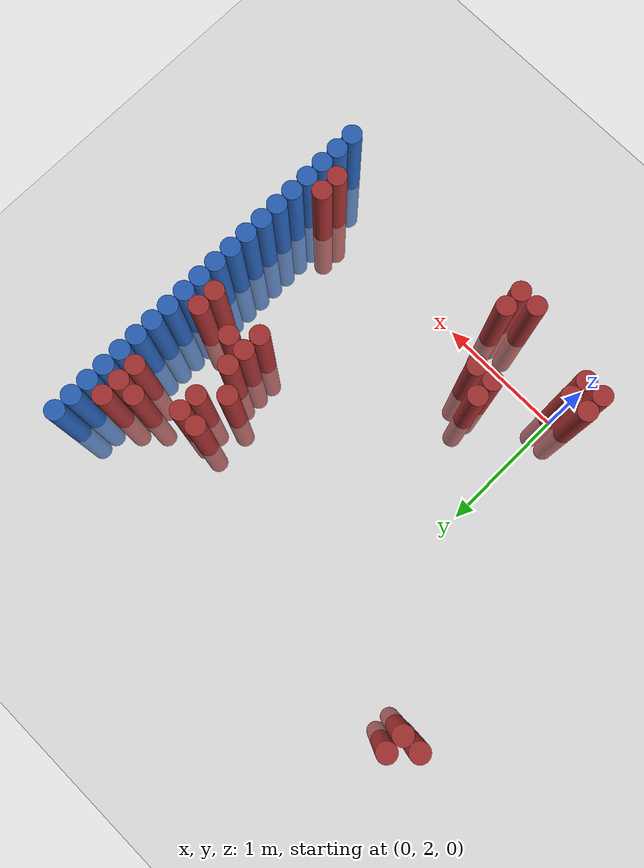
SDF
<sdf version="1.6">
 <world name="default">
  <model name="ground_plane">
   <static>1</static>
   <link name="link">
    <collision name="collision">
     <geometry><plane><normal>0 0 1</normal><size>100 100</size></plane></geometry>
     <surface><friction><ode><mu>100</mu><mu2>50</mu2></ode></friction></surface>
    </collision>
    <visual name="visual">
     <cast_shadows>0</cast_shadows>
     <geometry><plane><normal>0 0 1</normal><size>100 100</size></plane></geometry>
     <material>
      <script><uri>file://media/materials/scripts/gazebo.material</uri><name>Gazebo/Grey</name></script>
     </material>
    </visual>
   </link>
  </model>
  <model name="unit_cylinder_158">
   <static>1</static>
   <pose>-0.875000 4.375000 0.000000 0.000000 0.000000 0.000000</pose>
   <link name="link">
    <inertial>
     <mass>1</mass>
     <inertia><ixx>0.145833</ixx><ixy>0</ixy><ixz>0</ixz><iyy>0.145833</iyy><iyz>0</iyz><izz>0.125</izz></inertia>
    </inertial>
    <collision name="collision">
     <geometry><cylinder><radius>0.075000</radius><length>1.5</length></cylinder></geometry>
    </collision>
    <visual name="visual">
     <geometry><cylinder><radius>0.075000</radius><length>1.5</length></cylinder></geometry>
     <material>
      <ambient>0.648000 0.192000 0.192000 1</ambient>
      <diffuse>0.648000 0.192000 0.192000 1</diffuse>
     </material>
     <material>
      <script><name>Gazebo/Grey</name><uri>file://media/materials/scripts/gazebo.material</uri></script>
     </material>
    </visual>
   </link>
  </model>
  <model name="unit_cylinder_161">
   <static>1</static>
   <pose>-0.725000 4.375000 0.000000 0.000000 0.000000 0.000000</pose>
   <link name="link">
    <inertial>
     <mass>1</mass>
     <inertia><ixx>0.145833</ixx><ixy>0</ixy><ixz>0</ixz><iyy>0.145833</iyy><iyz>0</iyz><izz>0.125</izz></inertia>
    </inertial>
    <collision name="collision">
     <geometry><cylinder><radius>0.075000</radius><length>1.5</length></cylinder></geometry>
    </collision>
    <visual name="visual">
     <geometry><cylinder><radius>0.075000</radius><length>1.5</length></cylinder></geometry>
     <material>
      <ambient>0.648000 0.192000 0.192000 1</ambient>
      <diffuse>0.648000 0.192000 0.192000 1</diffuse>
     </material>
     <material>
      <script><name>Gazebo/Grey</name><uri>file://media/materials/scripts/gazebo.material</uri></script>
     </material>
    </visual>
   </link>
  </model>
  <model name="unit_cylinder_162">
   <static>1</static>
   <pose>-0.725000 4.525000 0.000000 0.000000 0.000000 0.000000</pose>
   <link name="link">
    <inertial>
     <mass>1</mass>
     <inertia><ixx>0.145833</ixx><ixy>0</ixy><ixz>0</ixz><iyy>0.145833</iyy><iyz>0</iyz><izz>0.125</izz></inertia>
    </inertial>
    <collision name="collision">
     <geometry><cylinder><radius>0.075000</radius><length>1.5</length></cylinder></geometry>
    </collision>
    <visual name="visual">
     <geometry><cylinder><radius>0.075000</radius><length>1.5</length></cylinder></geometry>
     <material>
      <ambient>0.648000 0.192000 0.192000 1</ambient>
      <diffuse>0.648000 0.192000 0.192000 1</diffuse>
     </material>
     <material>
      <script><name>Gazebo/Grey</name><uri>file://media/materials/scripts/gazebo.material</uri></script>
     </material>
    </visual>
   </link>
  </model>
  <model name="unit_cylinder_182">
   <static>1</static>
   <pose>-0.125000 1.825000 0.000000 0.000000 0.000000 0.000000</pose>
   <link name="link">
    <inertial>
     <mass>1</mass>
     <inertia><ixx>0.145833</ixx><ixy>0</ixy><ixz>0</ixz><iyy>0.145833</iyy><iyz>0</iyz><izz>0.125</izz></inertia>
    </inertial>
    <collision name="collision">
     <geometry><cylinder><radius>0.075000</radius><length>1.5</length></cylinder></geometry>
    </collision>
    <visual name="visual">
     <geometry><cylinder><radius>0.075000</radius><length>1.5</length></cylinder></geometry>
     <material>
      <ambient>0.648000 0.192000 0.192000 1</ambient>
      <diffuse>0.648000 0.192000 0.192000 1</diffuse>
     </material>
     <material>
      <script><name>Gazebo/Grey</name><uri>file://media/materials/scripts/gazebo.material</uri></script>
     </material>
    </visual>
   </link>
  </model>
  <model name="unit_cylinder_183">
   <static>1</static>
   <pose>-0.125000 1.975000 0.000000 0.000000 0.000000 0.000000</pose>
   <link name="link">
    <inertial>
     <mass>1</mass>
     <inertia><ixx>0.145833</ixx><ixy>0</ixy><ixz>0</ixz><iyy>0.145833</iyy><iyz>0</iyz><izz>0.125</izz></inertia>
    </inertial>
    <collision name="collision">
     <geometry><cylinder><radius>0.075000</radius><length>1.5</length></cylinder></geometry>
    </collision>
    <visual name="visual">
     <geometry><cylinder><radius>0.075000</radius><length>1.5</length></cylinder></geometry>
     <material>
      <ambient>0.648000 0.192000 0.192000 1</ambient>
      <diffuse>0.648000 0.192000 0.192000 1</diffuse>
     </material>
     <material>
      <script><name>Gazebo/Grey</name><uri>file://media/materials/scripts/gazebo.material</uri></script>
     </material>
    </visual>
   </link>
  </model>
  <model name="unit_cylinder_185">
   <static>1</static>
   <pose>0.025000 1.825000 0.000000 0.000000 0.000000 0.000000</pose>
   <link name="link">
    <inertial>
     <mass>1</mass>
     <inertia><ixx>0.145833</ixx><ixy>0</ixy><ixz>0</ixz><iyy>0.145833</iyy><iyz>0</iyz><izz>0.125</izz></inertia>
    </inertial>
    <collision name="collision">
     <geometry><cylinder><radius>0.075000</radius><length>1.5</length></cylinder></geometry>
    </collision>
    <visual name="visual">
     <geometry><cylinder><radius>0.075000</radius><length>1.5</length></cylinder></geometry>
     <material>
      <ambient>0.648000 0.192000 0.192000 1</ambient>
      <diffuse>0.648000 0.192000 0.192000 1</diffuse>
     </material>
     <material>
      <script><name>Gazebo/Grey</name><uri>file://media/materials/scripts/gazebo.material</uri></script>
     </material>
    </visual>
   </link>
  </model>
  <model name="unit_cylinder_186">
   <static>1</static>
   <pose>0.025000 1.975000 0.000000 0.000000 0.000000 0.000000</pose>
   <link name="link">
    <inertial>
     <mass>1</mass>
     <inertia><ixx>0.145833</ixx><ixy>0</ixy><ixz>0</ixz><iyy>0.145833</iyy><iyz>0</iyz><izz>0.125</izz></inertia>
    </inertial>
    <collision name="collision">
     <geometry><cylinder><radius>0.075000</radius><length>1.5</length></cylinder></geometry>
    </collision>
    <visual name="visual">
     <geometry><cylinder><radius>0.075000</radius><length>1.5</length></cylinder></geometry>
     <material>
      <ambient>0.648000 0.192000 0.192000 1</ambient>
      <diffuse>0.648000 0.192000 0.192000 1</diffuse>
     </material>
     <material>
      <script><name>Gazebo/Grey</name><uri>file://media/materials/scripts/gazebo.material</uri></script>
     </material>
    </visual>
   </link>
  </model>
  <model name="unit_cylinder_187">
   <static>1</static>
   <pose>0.475000 2.275000 0.000000 0.000000 0.000000 0.000000</pose>
   <link name="link">
    <inertial>
     <mass>1</mass>
     <inertia><ixx>0.145833</ixx><ixy>0</ixy><ixz>0</ixz><iyy>0.145833</iyy><iyz>0</iyz><izz>0.125</izz></inertia>
    </inertial>
    <collision name="collision">
     <geometry><cylinder><radius>0.075000</radius><length>1.5</length></cylinder></geometry>
    </collision>
    <visual name="visual">
     <geometry><cylinder><radius>0.075000</radius><length>1.5</length></cylinder></geometry>
     <material>
      <ambient>0.648000 0.192000 0.192000 1</ambient>
      <diffuse>0.648000 0.192000 0.192000 1</diffuse>
     </material>
     <material>
      <script><name>Gazebo/Grey</name><uri>file://media/materials/scripts/gazebo.material</uri></script>
     </material>
    </visual>
   </link>
  </model>
  <model name="unit_cylinder_188">
   <static>1</static>
   <pose>0.475000 2.425000 0.000000 0.000000 0.000000 0.000000</pose>
   <link name="link">
    <inertial>
     <mass>1</mass>
     <inertia><ixx>0.145833</ixx><ixy>0</ixy><ixz>0</ixz><iyy>0.145833</iyy><iyz>0</iyz><izz>0.125</izz></inertia>
    </inertial>
    <collision name="collision">
     <geometry><cylinder><radius>0.075000</radius><length>1.5</length></cylinder></geometry>
    </collision>
    <visual name="visual">
     <geometry><cylinder><radius>0.075000</radius><length>1.5</length></cylinder></geometry>
     <material>
      <ambient>0.648000 0.192000 0.192000 1</ambient>
      <diffuse>0.648000 0.192000 0.192000 1</diffuse>
     </material>
     <material>
      <script><name>Gazebo/Grey</name><uri>file://media/materials/scripts/gazebo.material</uri></script>
     </material>
    </visual>
   </link>
  </model>
  <model name="unit_cylinder_189">
   <static>1</static>
   <pose>0.625000 1.675000 0.000000 0.000000 0.000000 0.000000</pose>
   <link name="link">
    <inertial>
     <mass>1</mass>
     <inertia><ixx>0.145833</ixx><ixy>0</ixy><ixz>0</ixz><iyy>0.145833</iyy><iyz>0</iyz><izz>0.125</izz></inertia>
    </inertial>
    <collision name="collision">
     <geometry><cylinder><radius>0.075000</radius><length>1.5</length></cylinder></geometry>
    </collision>
    <visual name="visual">
     <geometry><cylinder><radius>0.075000</radius><length>1.5</length></cylinder></geometry>
     <material>
      <ambient>0.648000 0.192000 0.192000 1</ambient>
      <diffuse>0.648000 0.192000 0.192000 1</diffuse>
     </material>
     <material>
      <script><name>Gazebo/Grey</name><uri>file://media/materials/scripts/gazebo.material</uri></script>
     </material>
    </visual>
   </link>
  </model>
  <model name="unit_cylinder_190">
   <static>1</static>
   <pose>0.625000 2.275000 0.000000 0.000000 0.000000 0.000000</pose>
   <link name="link">
    <inertial>
     <mass>1</mass>
     <inertia><ixx>0.145833</ixx><ixy>0</ixy><ixz>0</ixz><iyy>0.145833</iyy><iyz>0</iyz><izz>0.125</izz></inertia>
    </inertial>
    <collision name="collision">
     <geometry><cylinder><radius>0.075000</radius><length>1.5</length></cylinder></geometry>
    </collision>
    <visual name="visual">
     <geometry><cylinder><radius>0.075000</radius><length>1.5</length></cylinder></geometry>
     <material>
      <ambient>0.648000 0.192000 0.192000 1</ambient>
      <diffuse>0.648000 0.192000 0.192000 1</diffuse>
     </material>
     <material>
      <script><name>Gazebo/Grey</name><uri>file://media/materials/scripts/gazebo.material</uri></script>
     </material>
    </visual>
   </link>
  </model>
  <model name="unit_cylinder_192">
   <static>1</static>
   <pose>0.775000 1.675000 0.000000 0.000000 0.000000 0.000000</pose>
   <link name="link">
    <inertial>
     <mass>1</mass>
     <inertia><ixx>0.145833</ixx><ixy>0</ixy><ixz>0</ixz><iyy>0.145833</iyy><iyz>0</iyz><izz>0.125</izz></inertia>
    </inertial>
    <collision name="collision">
     <geometry><cylinder><radius>0.075000</radius><length>1.5</length></cylinder></geometry>
    </collision>
    <visual name="visual">
     <geometry><cylinder><radius>0.075000</radius><length>1.5</length></cylinder></geometry>
     <material>
      <ambient>0.648000 0.192000 0.192000 1</ambient>
      <diffuse>0.648000 0.192000 0.192000 1</diffuse>
     </material>
     <material>
      <script><name>Gazebo/Grey</name><uri>file://media/materials/scripts/gazebo.material</uri></script>
     </material>
    </visual>
   </link>
  </model>
  <model name="unit_cylinder_193">
   <static>1</static>
   <pose>0.775000 1.825000 0.000000 0.000000 0.000000 0.000000</pose>
   <link name="link">
    <inertial>
     <mass>1</mass>
     <inertia><ixx>0.145833</ixx><ixy>0</ixy><ixz>0</ixz><iyy>0.145833</iyy><iyz>0</iyz><izz>0.125</izz></inertia>
    </inertial>
    <collision name="collision">
     <geometry><cylinder><radius>0.075000</radius><length>1.5</length></cylinder></geometry>
    </collision>
    <visual name="visual">
     <geometry><cylinder><radius>0.075000</radius><length>1.5</length></cylinder></geometry>
     <material>
      <ambient>0.648000 0.192000 0.192000 1</ambient>
      <diffuse>0.648000 0.192000 0.192000 1</diffuse>
     </material>
     <material>
      <script><name>Gazebo/Grey</name><uri>file://media/materials/scripts/gazebo.material</uri></script>
     </material>
    </visual>
   </link>
  </model>
  <model name="unit_cylinder_196">
   <static>1</static>
   <pose>1.675000 3.625000 0.000000 0.000000 0.000000 0.000000</pose>
   <link name="link">
    <inertial>
     <mass>1</mass>
     <inertia><ixx>0.145833</ixx><ixy>0</ixy><ixz>0</ixz><iyy>0.145833</iyy><iyz>0</iyz><izz>0.125</izz></inertia>
    </inertial>
    <collision name="collision">
     <geometry><cylinder><radius>0.075000</radius><length>1.5</length></cylinder></geometry>
    </collision>
    <visual name="visual">
     <geometry><cylinder><radius>0.075000</radius><length>1.5</length></cylinder></geometry>
     <material>
      <ambient>0.648000 0.192000 0.192000 1</ambient>
      <diffuse>0.648000 0.192000 0.192000 1</diffuse>
     </material>
     <material>
      <script><name>Gazebo/Grey</name><uri>file://media/materials/scripts/gazebo.material</uri></script>
     </material>
    </visual>
   </link>
  </model>
  <model name="unit_cylinder_197">
   <static>1</static>
   <pose>1.675000 3.925000 0.000000 0.000000 0.000000 0.000000</pose>
   <link name="link">
    <inertial>
     <mass>1</mass>
     <inertia><ixx>0.145833</ixx><ixy>0</ixy><ixz>0</ixz><iyy>0.145833</iyy><iyz>0</iyz><izz>0.125</izz></inertia>
    </inertial>
    <collision name="collision">
     <geometry><cylinder><radius>0.075000</radius><length>1.5</length></cylinder></geometry>
    </collision>
    <visual name="visual">
     <geometry><cylinder><radius>0.075000</radius><length>1.5</length></cylinder></geometry>
     <material>
      <ambient>0.648000 0.192000 0.192000 1</ambient>
      <diffuse>0.648000 0.192000 0.192000 1</diffuse>
     </material>
     <material>
      <script><name>Gazebo/Grey</name><uri>file://media/materials/scripts/gazebo.material</uri></script>
     </material>
    </visual>
   </link>
  </model>
  <model name="unit_cylinder_198">
   <static>1</static>
   <pose>1.825000 3.175000 0.000000 0.000000 0.000000 0.000000</pose>
   <link name="link">
    <inertial>
     <mass>1</mass>
     <inertia><ixx>0.145833</ixx><ixy>0</ixy><ixz>0</ixz><iyy>0.145833</iyy><iyz>0</iyz><izz>0.125</izz></inertia>
    </inertial>
    <collision name="collision">
     <geometry><cylinder><radius>0.075000</radius><length>1.5</length></cylinder></geometry>
    </collision>
    <visual name="visual">
     <geometry><cylinder><radius>0.075000</radius><length>1.5</length></cylinder></geometry>
     <material>
      <ambient>0.648000 0.192000 0.192000 1</ambient>
      <diffuse>0.648000 0.192000 0.192000 1</diffuse>
     </material>
     <material>
      <script><name>Gazebo/Grey</name><uri>file://media/materials/scripts/gazebo.material</uri></script>
     </material>
    </visual>
   </link>
  </model>
  <model name="unit_cylinder_199">
   <static>1</static>
   <pose>1.825000 3.325000 0.000000 0.000000 0.000000 0.000000</pose>
   <link name="link">
    <inertial>
     <mass>1</mass>
     <inertia><ixx>0.145833</ixx><ixy>0</ixy><ixz>0</ixz><iyy>0.145833</iyy><iyz>0</iyz><izz>0.125</izz></inertia>
    </inertial>
    <collision name="collision">
     <geometry><cylinder><radius>0.075000</radius><length>1.5</length></cylinder></geometry>
    </collision>
    <visual name="visual">
     <geometry><cylinder><radius>0.075000</radius><length>1.5</length></cylinder></geometry>
     <material>
      <ambient>0.648000 0.192000 0.192000 1</ambient>
      <diffuse>0.648000 0.192000 0.192000 1</diffuse>
     </material>
     <material>
      <script><name>Gazebo/Grey</name><uri>file://media/materials/scripts/gazebo.material</uri></script>
     </material>
    </visual>
   </link>
  </model>
  <model name="unit_cylinder_200">
   <static>1</static>
   <pose>1.825000 3.475000 0.000000 0.000000 0.000000 0.000000</pose>
   <link name="link">
    <inertial>
     <mass>1</mass>
     <inertia><ixx>0.145833</ixx><ixy>0</ixy><ixz>0</ixz><iyy>0.145833</iyy><iyz>0</iyz><izz>0.125</izz></inertia>
    </inertial>
    <collision name="collision">
     <geometry><cylinder><radius>0.075000</radius><length>1.5</length></cylinder></geometry>
    </collision>
    <visual name="visual">
     <geometry><cylinder><radius>0.075000</radius><length>1.5</length></cylinder></geometry>
     <material>
      <ambient>0.648000 0.192000 0.192000 1</ambient>
      <diffuse>0.648000 0.192000 0.192000 1</diffuse>
     </material>
     <material>
      <script><name>Gazebo/Grey</name><uri>file://media/materials/scripts/gazebo.material</uri></script>
     </material>
    </visual>
   </link>
  </model>
  <model name="unit_cylinder_201">
   <static>1</static>
   <pose>1.825000 3.775000 0.000000 0.000000 0.000000 0.000000</pose>
   <link name="link">
    <inertial>
     <mass>1</mass>
     <inertia><ixx>0.145833</ixx><ixy>0</ixy><ixz>0</ixz><iyy>0.145833</iyy><iyz>0</iyz><izz>0.125</izz></inertia>
    </inertial>
    <collision name="collision">
     <geometry><cylinder><radius>0.075000</radius><length>1.5</length></cylinder></geometry>
    </collision>
    <visual name="visual">
     <geometry><cylinder><radius>0.075000</radius><length>1.5</length></cylinder></geometry>
     <material>
      <ambient>0.648000 0.192000 0.192000 1</ambient>
      <diffuse>0.648000 0.192000 0.192000 1</diffuse>
     </material>
     <material>
      <script><name>Gazebo/Grey</name><uri>file://media/materials/scripts/gazebo.material</uri></script>
     </material>
    </visual>
   </link>
  </model>
  <model name="unit_cylinder_202">
   <static>1</static>
   <pose>1.825000 3.925000 0.000000 0.000000 0.000000 0.000000</pose>
   <link name="link">
    <inertial>
     <mass>1</mass>
     <inertia><ixx>0.145833</ixx><ixy>0</ixy><ixz>0</ixz><iyy>0.145833</iyy><iyz>0</iyz><izz>0.125</izz></inertia>
    </inertial>
    <collision name="collision">
     <geometry><cylinder><radius>0.075000</radius><length>1.5</length></cylinder></geometry>
    </collision>
    <visual name="visual">
     <geometry><cylinder><radius>0.075000</radius><length>1.5</length></cylinder></geometry>
     <material>
      <ambient>0.648000 0.192000 0.192000 1</ambient>
      <diffuse>0.648000 0.192000 0.192000 1</diffuse>
     </material>
     <material>
      <script><name>Gazebo/Grey</name><uri>file://media/materials/scripts/gazebo.material</uri></script>
     </material>
    </visual>
   </link>
  </model>
  <model name="unit_cylinder_203">
   <static>1</static>
   <pose>1.975000 3.325000 0.000000 0.000000 0.000000 0.000000</pose>
   <link name="link">
    <inertial>
     <mass>1</mass>
     <inertia><ixx>0.145833</ixx><ixy>0</ixy><ixz>0</ixz><iyy>0.145833</iyy><iyz>0</iyz><izz>0.125</izz></inertia>
    </inertial>
    <collision name="collision">
     <geometry><cylinder><radius>0.075000</radius><length>1.5</length></cylinder></geometry>
    </collision>
    <visual name="visual">
     <geometry><cylinder><radius>0.075000</radius><length>1.5</length></cylinder></geometry>
     <material>
      <ambient>0.648000 0.192000 0.192000 1</ambient>
      <diffuse>0.648000 0.192000 0.192000 1</diffuse>
     </material>
     <material>
      <script><name>Gazebo/Grey</name><uri>file://media/materials/scripts/gazebo.material</uri></script>
     </material>
    </visual>
   </link>
  </model>
  <model name="unit_cylinder_204">
   <static>1</static>
   <pose>2.125000 4.075000 0.000000 0.000000 0.000000 0.000000</pose>
   <link name="link">
    <inertial>
     <mass>1</mass>
     <inertia><ixx>0.145833</ixx><ixy>0</ixy><ixz>0</ixz><iyy>0.145833</iyy><iyz>0</iyz><izz>0.125</izz></inertia>
    </inertial>
    <collision name="collision">
     <geometry><cylinder><radius>0.075000</radius><length>1.5</length></cylinder></geometry>
    </collision>
    <visual name="visual">
     <geometry><cylinder><radius>0.075000</radius><length>1.5</length></cylinder></geometry>
     <material>
      <ambient>0.648000 0.192000 0.192000 1</ambient>
      <diffuse>0.648000 0.192000 0.192000 1</diffuse>
     </material>
     <material>
      <script><name>Gazebo/Grey</name><uri>file://media/materials/scripts/gazebo.material</uri></script>
     </material>
    </visual>
   </link>
  </model>
  <model name="unit_cylinder_207">
   <static>1</static>
   <pose>2.275000 1.975000 0.000000 0.000000 0.000000 0.000000</pose>
   <link name="link">
    <inertial>
     <mass>1</mass>
     <inertia><ixx>0.145833</ixx><ixy>0</ixy><ixz>0</ixz><iyy>0.145833</iyy><iyz>0</iyz><izz>0.125</izz></inertia>
    </inertial>
    <collision name="collision">
     <geometry><cylinder><radius>0.075000</radius><length>1.5</length></cylinder></geometry>
    </collision>
    <visual name="visual">
     <geometry><cylinder><radius>0.075000</radius><length>1.5</length></cylinder></geometry>
     <material>
      <ambient>0.648000 0.192000 0.192000 1</ambient>
      <diffuse>0.648000 0.192000 0.192000 1</diffuse>
     </material>
     <material>
      <script><name>Gazebo/Grey</name><uri>file://media/materials/scripts/gazebo.material</uri></script>
     </material>
    </visual>
   </link>
  </model>
  <model name="unit_cylinder_208">
   <static>1</static>
   <pose>2.275000 2.125000 0.000000 0.000000 0.000000 0.000000</pose>
   <link name="link">
    <inertial>
     <mass>1</mass>
     <inertia><ixx>0.145833</ixx><ixy>0</ixy><ixz>0</ixz><iyy>0.145833</iyy><iyz>0</iyz><izz>0.125</izz></inertia>
    </inertial>
    <collision name="collision">
     <geometry><cylinder><radius>0.075000</radius><length>1.5</length></cylinder></geometry>
    </collision>
    <visual name="visual">
     <geometry><cylinder><radius>0.075000</radius><length>1.5</length></cylinder></geometry>
     <material>
      <ambient>0.648000 0.192000 0.192000 1</ambient>
      <diffuse>0.648000 0.192000 0.192000 1</diffuse>
     </material>
     <material>
      <script><name>Gazebo/Grey</name><uri>file://media/materials/scripts/gazebo.material</uri></script>
     </material>
    </visual>
   </link>
  </model>
  <model name="unit_cylinder_209">
   <static>1</static>
   <pose>2.275000 3.175000 0.000000 0.000000 0.000000 0.000000</pose>
   <link name="link">
    <inertial>
     <mass>1</mass>
     <inertia><ixx>0.145833</ixx><ixy>0</ixy><ixz>0</ixz><iyy>0.145833</iyy><iyz>0</iyz><izz>0.125</izz></inertia>
    </inertial>
    <collision name="collision">
     <geometry><cylinder><radius>0.075000</radius><length>1.5</length></cylinder></geometry>
    </collision>
    <visual name="visual">
     <geometry><cylinder><radius>0.075000</radius><length>1.5</length></cylinder></geometry>
     <material>
      <ambient>0.648000 0.192000 0.192000 1</ambient>
      <diffuse>0.648000 0.192000 0.192000 1</diffuse>
     </material>
     <material>
      <script><name>Gazebo/Grey</name><uri>file://media/materials/scripts/gazebo.material</uri></script>
     </material>
    </visual>
   </link>
  </model>
  <model name="unit_cylinder_210">
   <static>1</static>
   <pose>2.275000 3.325000 0.000000 0.000000 0.000000 0.000000</pose>
   <link name="link">
    <inertial>
     <mass>1</mass>
     <inertia><ixx>0.145833</ixx><ixy>0</ixy><ixz>0</ixz><iyy>0.145833</iyy><iyz>0</iyz><izz>0.125</izz></inertia>
    </inertial>
    <collision name="collision">
     <geometry><cylinder><radius>0.075000</radius><length>1.5</length></cylinder></geometry>
    </collision>
    <visual name="visual">
     <geometry><cylinder><radius>0.075000</radius><length>1.5</length></cylinder></geometry>
     <material>
      <ambient>0.648000 0.192000 0.192000 1</ambient>
      <diffuse>0.648000 0.192000 0.192000 1</diffuse>
     </material>
     <material>
      <script><name>Gazebo/Grey</name><uri>file://media/materials/scripts/gazebo.material</uri></script>
     </material>
    </visual>
   </link>
  </model>
  <model name="unit_cylinder_211">
   <static>1</static>
   <pose>2.275000 3.925000 0.000000 0.000000 0.000000 0.000000</pose>
   <link name="link">
    <inertial>
     <mass>1</mass>
     <inertia><ixx>0.145833</ixx><ixy>0</ixy><ixz>0</ixz><iyy>0.145833</iyy><iyz>0</iyz><izz>0.125</izz></inertia>
    </inertial>
    <collision name="collision">
     <geometry><cylinder><radius>0.075000</radius><length>1.5</length></cylinder></geometry>
    </collision>
    <visual name="visual">
     <geometry><cylinder><radius>0.075000</radius><length>1.5</length></cylinder></geometry>
     <material>
      <ambient>0.648000 0.192000 0.192000 1</ambient>
      <diffuse>0.648000 0.192000 0.192000 1</diffuse>
     </material>
     <material>
      <script><name>Gazebo/Grey</name><uri>file://media/materials/scripts/gazebo.material</uri></script>
     </material>
    </visual>
   </link>
  </model>
  <model name="unit_cylinder_212">
   <static>1</static>
   <pose>2.275000 4.075000 0.000000 0.000000 0.000000 0.000000</pose>
   <link name="link">
    <inertial>
     <mass>1</mass>
     <inertia><ixx>0.145833</ixx><ixy>0</ixy><ixz>0</ixz><iyy>0.145833</iyy><iyz>0</iyz><izz>0.125</izz></inertia>
    </inertial>
    <collision name="collision">
     <geometry><cylinder><radius>0.075000</radius><length>1.5</length></cylinder></geometry>
    </collision>
    <visual name="visual">
     <geometry><cylinder><radius>0.075000</radius><length>1.5</length></cylinder></geometry>
     <material>
      <ambient>0.648000 0.192000 0.192000 1</ambient>
      <diffuse>0.648000 0.192000 0.192000 1</diffuse>
     </material>
     <material>
      <script><name>Gazebo/Grey</name><uri>file://media/materials/scripts/gazebo.material</uri></script>
     </material>
    </visual>
   </link>
  </model>
  <model name="unit_cylinder_213">
   <static>1</static>
   <pose>2.275000 4.225000 0.000000 0.000000 0.000000 0.000000</pose>
   <link name="link">
    <inertial>
     <mass>1</mass>
     <inertia><ixx>0.145833</ixx><ixy>0</ixy><ixz>0</ixz><iyy>0.145833</iyy><iyz>0</iyz><izz>0.125</izz></inertia>
    </inertial>
    <collision name="collision">
     <geometry><cylinder><radius>0.075000</radius><length>1.5</length></cylinder></geometry>
    </collision>
    <visual name="visual">
     <geometry><cylinder><radius>0.075000</radius><length>1.5</length></cylinder></geometry>
     <material>
      <ambient>0.648000 0.192000 0.192000 1</ambient>
      <diffuse>0.648000 0.192000 0.192000 1</diffuse>
     </material>
     <material>
      <script><name>Gazebo/Grey</name><uri>file://media/materials/scripts/gazebo.material</uri></script>
     </material>
    </visual>
   </link>
  </model>
  <model name="unit_cylinder_224">
   <static>1</static>
   <pose>2.425000 1.675000 0.000000 0.000000 0.000000 0.000000</pose>
   <link name="link">
    <inertial>
     <mass>1</mass>
     <inertia><ixx>0.145833</ixx><ixy>0</ixy><ixz>0</ixz><iyy>0.145833</iyy><iyz>0</iyz><izz>0.125</izz></inertia>
    </inertial>
    <collision name="collision">
     <geometry><cylinder><radius>0.075000</radius><length>1.5</length></cylinder></geometry>
    </collision>
    <visual name="visual">
     <geometry><cylinder><radius>0.075000</radius><length>1.5</length></cylinder></geometry>
     <material>
      <ambient>0.152000 0.379000 0.720000 1</ambient>
      <diffuse>0.152000 0.379000 0.720000 1</diffuse>
     </material>
     <material>
      <script><name>Gazebo/Grey</name><uri>file://media/materials/scripts/gazebo.material</uri></script>
     </material>
    </visual>
   </link>
  </model>
  <model name="unit_cylinder_225">
   <static>1</static>
   <pose>2.425000 1.825000 0.000000 0.000000 0.000000 0.000000</pose>
   <link name="link">
    <inertial>
     <mass>1</mass>
     <inertia><ixx>0.145833</ixx><ixy>0</ixy><ixz>0</ixz><iyy>0.145833</iyy><iyz>0</iyz><izz>0.125</izz></inertia>
    </inertial>
    <collision name="collision">
     <geometry><cylinder><radius>0.075000</radius><length>1.5</length></cylinder></geometry>
    </collision>
    <visual name="visual">
     <geometry><cylinder><radius>0.075000</radius><length>1.5</length></cylinder></geometry>
     <material>
      <ambient>0.152000 0.379000 0.720000 1</ambient>
      <diffuse>0.152000 0.379000 0.720000 1</diffuse>
     </material>
     <material>
      <script><name>Gazebo/Grey</name><uri>file://media/materials/scripts/gazebo.material</uri></script>
     </material>
    </visual>
   </link>
  </model>
  <model name="unit_cylinder_226">
   <static>1</static>
   <pose>2.425000 1.975000 0.000000 0.000000 0.000000 0.000000</pose>
   <link name="link">
    <inertial>
     <mass>1</mass>
     <inertia><ixx>0.145833</ixx><ixy>0</ixy><ixz>0</ixz><iyy>0.145833</iyy><iyz>0</iyz><izz>0.125</izz></inertia>
    </inertial>
    <collision name="collision">
     <geometry><cylinder><radius>0.075000</radius><length>1.5</length></cylinder></geometry>
    </collision>
    <visual name="visual">
     <geometry><cylinder><radius>0.075000</radius><length>1.5</length></cylinder></geometry>
     <material>
      <ambient>0.152000 0.379000 0.720000 1</ambient>
      <diffuse>0.152000 0.379000 0.720000 1</diffuse>
     </material>
     <material>
      <script><name>Gazebo/Grey</name><uri>file://media/materials/scripts/gazebo.material</uri></script>
     </material>
    </visual>
   </link>
  </model>
  <model name="unit_cylinder_227">
   <static>1</static>
   <pose>2.425000 2.125000 0.000000 0.000000 0.000000 0.000000</pose>
   <link name="link">
    <inertial>
     <mass>1</mass>
     <inertia><ixx>0.145833</ixx><ixy>0</ixy><ixz>0</ixz><iyy>0.145833</iyy><iyz>0</iyz><izz>0.125</izz></inertia>
    </inertial>
    <collision name="collision">
     <geometry><cylinder><radius>0.075000</radius><length>1.5</length></cylinder></geometry>
    </collision>
    <visual name="visual">
     <geometry><cylinder><radius>0.075000</radius><length>1.5</length></cylinder></geometry>
     <material>
      <ambient>0.152000 0.379000 0.720000 1</ambient>
      <diffuse>0.152000 0.379000 0.720000 1</diffuse>
     </material>
     <material>
      <script><name>Gazebo/Grey</name><uri>file://media/materials/scripts/gazebo.material</uri></script>
     </material>
    </visual>
   </link>
  </model>
  <model name="unit_cylinder_228">
   <static>1</static>
   <pose>2.425000 2.275000 0.000000 0.000000 0.000000 0.000000</pose>
   <link name="link">
    <inertial>
     <mass>1</mass>
     <inertia><ixx>0.145833</ixx><ixy>0</ixy><ixz>0</ixz><iyy>0.145833</iyy><iyz>0</iyz><izz>0.125</izz></inertia>
    </inertial>
    <collision name="collision">
     <geometry><cylinder><radius>0.075000</radius><length>1.5</length></cylinder></geometry>
    </collision>
    <visual name="visual">
     <geometry><cylinder><radius>0.075000</radius><length>1.5</length></cylinder></geometry>
     <material>
      <ambient>0.152000 0.379000 0.720000 1</ambient>
      <diffuse>0.152000 0.379000 0.720000 1</diffuse>
     </material>
     <material>
      <script><name>Gazebo/Grey</name><uri>file://media/materials/scripts/gazebo.material</uri></script>
     </material>
    </visual>
   </link>
  </model>
  <model name="unit_cylinder_229">
   <static>1</static>
   <pose>2.425000 2.425000 0.000000 0.000000 0.000000 0.000000</pose>
   <link name="link">
    <inertial>
     <mass>1</mass>
     <inertia><ixx>0.145833</ixx><ixy>0</ixy><ixz>0</ixz><iyy>0.145833</iyy><iyz>0</iyz><izz>0.125</izz></inertia>
    </inertial>
    <collision name="collision">
     <geometry><cylinder><radius>0.075000</radius><length>1.5</length></cylinder></geometry>
    </collision>
    <visual name="visual">
     <geometry><cylinder><radius>0.075000</radius><length>1.5</length></cylinder></geometry>
     <material>
      <ambient>0.152000 0.379000 0.720000 1</ambient>
      <diffuse>0.152000 0.379000 0.720000 1</diffuse>
     </material>
     <material>
      <script><name>Gazebo/Grey</name><uri>file://media/materials/scripts/gazebo.material</uri></script>
     </material>
    </visual>
   </link>
  </model>
  <model name="unit_cylinder_230">
   <static>1</static>
   <pose>2.425000 2.575000 0.000000 0.000000 0.000000 0.000000</pose>
   <link name="link">
    <inertial>
     <mass>1</mass>
     <inertia><ixx>0.145833</ixx><ixy>0</ixy><ixz>0</ixz><iyy>0.145833</iyy><iyz>0</iyz><izz>0.125</izz></inertia>
    </inertial>
    <collision name="collision">
     <geometry><cylinder><radius>0.075000</radius><length>1.5</length></cylinder></geometry>
    </collision>
    <visual name="visual">
     <geometry><cylinder><radius>0.075000</radius><length>1.5</length></cylinder></geometry>
     <material>
      <ambient>0.152000 0.379000 0.720000 1</ambient>
      <diffuse>0.152000 0.379000 0.720000 1</diffuse>
     </material>
     <material>
      <script><name>Gazebo/Grey</name><uri>file://media/materials/scripts/gazebo.material</uri></script>
     </material>
    </visual>
   </link>
  </model>
  <model name="unit_cylinder_231">
   <static>1</static>
   <pose>2.425000 2.725000 0.000000 0.000000 0.000000 0.000000</pose>
   <link name="link">
    <inertial>
     <mass>1</mass>
     <inertia><ixx>0.145833</ixx><ixy>0</ixy><ixz>0</ixz><iyy>0.145833</iyy><iyz>0</iyz><izz>0.125</izz></inertia>
    </inertial>
    <collision name="collision">
     <geometry><cylinder><radius>0.075000</radius><length>1.5</length></cylinder></geometry>
    </collision>
    <visual name="visual">
     <geometry><cylinder><radius>0.075000</radius><length>1.5</length></cylinder></geometry>
     <material>
      <ambient>0.152000 0.379000 0.720000 1</ambient>
      <diffuse>0.152000 0.379000 0.720000 1</diffuse>
     </material>
     <material>
      <script><name>Gazebo/Grey</name><uri>file://media/materials/scripts/gazebo.material</uri></script>
     </material>
    </visual>
   </link>
  </model>
  <model name="unit_cylinder_232">
   <static>1</static>
   <pose>2.425000 2.875000 0.000000 0.000000 0.000000 0.000000</pose>
   <link name="link">
    <inertial>
     <mass>1</mass>
     <inertia><ixx>0.145833</ixx><ixy>0</ixy><ixz>0</ixz><iyy>0.145833</iyy><iyz>0</iyz><izz>0.125</izz></inertia>
    </inertial>
    <collision name="collision">
     <geometry><cylinder><radius>0.075000</radius><length>1.5</length></cylinder></geometry>
    </collision>
    <visual name="visual">
     <geometry><cylinder><radius>0.075000</radius><length>1.5</length></cylinder></geometry>
     <material>
      <ambient>0.152000 0.379000 0.720000 1</ambient>
      <diffuse>0.152000 0.379000 0.720000 1</diffuse>
     </material>
     <material>
      <script><name>Gazebo/Grey</name><uri>file://media/materials/scripts/gazebo.material</uri></script>
     </material>
    </visual>
   </link>
  </model>
  <model name="unit_cylinder_233">
   <static>1</static>
   <pose>2.425000 3.025000 0.000000 0.000000 0.000000 0.000000</pose>
   <link name="link">
    <inertial>
     <mass>1</mass>
     <inertia><ixx>0.145833</ixx><ixy>0</ixy><ixz>0</ixz><iyy>0.145833</iyy><iyz>0</iyz><izz>0.125</izz></inertia>
    </inertial>
    <collision name="collision">
     <geometry><cylinder><radius>0.075000</radius><length>1.5</length></cylinder></geometry>
    </collision>
    <visual name="visual">
     <geometry><cylinder><radius>0.075000</radius><length>1.5</length></cylinder></geometry>
     <material>
      <ambient>0.152000 0.379000 0.720000 1</ambient>
      <diffuse>0.152000 0.379000 0.720000 1</diffuse>
     </material>
     <material>
      <script><name>Gazebo/Grey</name><uri>file://media/materials/scripts/gazebo.material</uri></script>
     </material>
    </visual>
   </link>
  </model>
  <model name="unit_cylinder_234">
   <static>1</static>
   <pose>2.425000 3.175000 0.000000 0.000000 0.000000 0.000000</pose>
   <link name="link">
    <inertial>
     <mass>1</mass>
     <inertia><ixx>0.145833</ixx><ixy>0</ixy><ixz>0</ixz><iyy>0.145833</iyy><iyz>0</iyz><izz>0.125</izz></inertia>
    </inertial>
    <collision name="collision">
     <geometry><cylinder><radius>0.075000</radius><length>1.5</length></cylinder></geometry>
    </collision>
    <visual name="visual">
     <geometry><cylinder><radius>0.075000</radius><length>1.5</length></cylinder></geometry>
     <material>
      <ambient>0.152000 0.379000 0.720000 1</ambient>
      <diffuse>0.152000 0.379000 0.720000 1</diffuse>
     </material>
     <material>
      <script><name>Gazebo/Grey</name><uri>file://media/materials/scripts/gazebo.material</uri></script>
     </material>
    </visual>
   </link>
  </model>
  <model name="unit_cylinder_235">
   <static>1</static>
   <pose>2.425000 3.325000 0.000000 0.000000 0.000000 0.000000</pose>
   <link name="link">
    <inertial>
     <mass>1</mass>
     <inertia><ixx>0.145833</ixx><ixy>0</ixy><ixz>0</ixz><iyy>0.145833</iyy><iyz>0</iyz><izz>0.125</izz></inertia>
    </inertial>
    <collision name="collision">
     <geometry><cylinder><radius>0.075000</radius><length>1.5</length></cylinder></geometry>
    </collision>
    <visual name="visual">
     <geometry><cylinder><radius>0.075000</radius><length>1.5</length></cylinder></geometry>
     <material>
      <ambient>0.152000 0.379000 0.720000 1</ambient>
      <diffuse>0.152000 0.379000 0.720000 1</diffuse>
     </material>
     <material>
      <script><name>Gazebo/Grey</name><uri>file://media/materials/scripts/gazebo.material</uri></script>
     </material>
    </visual>
   </link>
  </model>
  <model name="unit_cylinder_236">
   <static>1</static>
   <pose>2.425000 3.475000 0.000000 0.000000 0.000000 0.000000</pose>
   <link name="link">
    <inertial>
     <mass>1</mass>
     <inertia><ixx>0.145833</ixx><ixy>0</ixy><ixz>0</ixz><iyy>0.145833</iyy><iyz>0</iyz><izz>0.125</izz></inertia>
    </inertial>
    <collision name="collision">
     <geometry><cylinder><radius>0.075000</radius><length>1.5</length></cylinder></geometry>
    </collision>
    <visual name="visual">
     <geometry><cylinder><radius>0.075000</radius><length>1.5</length></cylinder></geometry>
     <material>
      <ambient>0.152000 0.379000 0.720000 1</ambient>
      <diffuse>0.152000 0.379000 0.720000 1</diffuse>
     </material>
     <material>
      <script><name>Gazebo/Grey</name><uri>file://media/materials/scripts/gazebo.material</uri></script>
     </material>
    </visual>
   </link>
  </model>
  <model name="unit_cylinder_237">
   <static>1</static>
   <pose>2.425000 3.625000 0.000000 0.000000 0.000000 0.000000</pose>
   <link name="link">
    <inertial>
     <mass>1</mass>
     <inertia><ixx>0.145833</ixx><ixy>0</ixy><ixz>0</ixz><iyy>0.145833</iyy><iyz>0</iyz><izz>0.125</izz></inertia>
    </inertial>
    <collision name="collision">
     <geometry><cylinder><radius>0.075000</radius><length>1.5</length></cylinder></geometry>
    </collision>
    <visual name="visual">
     <geometry><cylinder><radius>0.075000</radius><length>1.5</length></cylinder></geometry>
     <material>
      <ambient>0.152000 0.379000 0.720000 1</ambient>
      <diffuse>0.152000 0.379000 0.720000 1</diffuse>
     </material>
     <material>
      <script><name>Gazebo/Grey</name><uri>file://media/materials/scripts/gazebo.material</uri></script>
     </material>
    </visual>
   </link>
  </model>
  <model name="unit_cylinder_238">
   <static>1</static>
   <pose>2.425000 3.775000 0.000000 0.000000 0.000000 0.000000</pose>
   <link name="link">
    <inertial>
     <mass>1</mass>
     <inertia><ixx>0.145833</ixx><ixy>0</ixy><ixz>0</ixz><iyy>0.145833</iyy><iyz>0</iyz><izz>0.125</izz></inertia>
    </inertial>
    <collision name="collision">
     <geometry><cylinder><radius>0.075000</radius><length>1.5</length></cylinder></geometry>
    </collision>
    <visual name="visual">
     <geometry><cylinder><radius>0.075000</radius><length>1.5</length></cylinder></geometry>
     <material>
      <ambient>0.152000 0.379000 0.720000 1</ambient>
      <diffuse>0.152000 0.379000 0.720000 1</diffuse>
     </material>
     <material>
      <script><name>Gazebo/Grey</name><uri>file://media/materials/scripts/gazebo.material</uri></script>
     </material>
    </visual>
   </link>
  </model>
  <model name="unit_cylinder_239">
   <static>1</static>
   <pose>2.425000 3.925000 0.000000 0.000000 0.000000 0.000000</pose>
   <link name="link">
    <inertial>
     <mass>1</mass>
     <inertia><ixx>0.145833</ixx><ixy>0</ixy><ixz>0</ixz><iyy>0.145833</iyy><iyz>0</iyz><izz>0.125</izz></inertia>
    </inertial>
    <collision name="collision">
     <geometry><cylinder><radius>0.075000</radius><length>1.5</length></cylinder></geometry>
    </collision>
    <visual name="visual">
     <geometry><cylinder><radius>0.075000</radius><length>1.5</length></cylinder></geometry>
     <material>
      <ambient>0.152000 0.379000 0.720000 1</ambient>
      <diffuse>0.152000 0.379000 0.720000 1</diffuse>
     </material>
     <material>
      <script><name>Gazebo/Grey</name><uri>file://media/materials/scripts/gazebo.material</uri></script>
     </material>
    </visual>
   </link>
  </model>
  <model name="unit_cylinder_240">
   <static>1</static>
   <pose>2.425000 4.075000 0.000000 0.000000 0.000000 0.000000</pose>
   <link name="link">
    <inertial>
     <mass>1</mass>
     <inertia><ixx>0.145833</ixx><ixy>0</ixy><ixz>0</ixz><iyy>0.145833</iyy><iyz>0</iyz><izz>0.125</izz></inertia>
    </inertial>
    <collision name="collision">
     <geometry><cylinder><radius>0.075000</radius><length>1.5</length></cylinder></geometry>
    </collision>
    <visual name="visual">
     <geometry><cylinder><radius>0.075000</radius><length>1.5</length></cylinder></geometry>
     <material>
      <ambient>0.152000 0.379000 0.720000 1</ambient>
      <diffuse>0.152000 0.379000 0.720000 1</diffuse>
     </material>
     <material>
      <script><name>Gazebo/Grey</name><uri>file://media/materials/scripts/gazebo.material</uri></script>
     </material>
    </visual>
   </link>
  </model>
  <model name="unit_cylinder_241">
   <static>1</static>
   <pose>2.425000 4.225000 0.000000 0.000000 0.000000 0.000000</pose>
   <link name="link">
    <inertial>
     <mass>1</mass>
     <inertia><ixx>0.145833</ixx><ixy>0</ixy><ixz>0</ixz><iyy>0.145833</iyy><iyz>0</iyz><izz>0.125</izz></inertia>
    </inertial>
    <collision name="collision">
     <geometry><cylinder><radius>0.075000</radius><length>1.5</length></cylinder></geometry>
    </collision>
    <visual name="visual">
     <geometry><cylinder><radius>0.075000</radius><length>1.5</length></cylinder></geometry>
     <material>
      <ambient>0.152000 0.379000 0.720000 1</ambient>
      <diffuse>0.152000 0.379000 0.720000 1</diffuse>
     </material>
     <material>
      <script><name>Gazebo/Grey</name><uri>file://media/materials/scripts/gazebo.material</uri></script>
     </material>
    </visual>
   </link>
  </model>
  <model name="unit_cylinder_242">
   <static>1</static>
   <pose>2.425000 4.375000 0.000000 0.000000 0.000000 0.000000</pose>
   <link name="link">
    <inertial>
     <mass>1</mass>
     <inertia><ixx>0.145833</ixx><ixy>0</ixy><ixz>0</ixz><iyy>0.145833</iyy><iyz>0</iyz><izz>0.125</izz></inertia>
    </inertial>
    <collision name="collision">
     <geometry><cylinder><radius>0.075000</radius><length>1.5</length></cylinder></geometry>
    </collision>
    <visual name="visual">
     <geometry><cylinder><radius>0.075000</radius><length>1.5</length></cylinder></geometry>
     <material>
      <ambient>0.152000 0.379000 0.720000 1</ambient>
      <diffuse>0.152000 0.379000 0.720000 1</diffuse>
     </material>
     <material>
      <script><name>Gazebo/Grey</name><uri>file://media/materials/scripts/gazebo.material</uri></script>
     </material>
    </visual>
   </link>
  </model>
  <model name="unit_cylinder_243">
   <static>1</static>
   <pose>2.425000 4.525000 0.000000 0.000000 0.000000 0.000000</pose>
   <link name="link">
    <inertial>
     <mass>1</mass>
     <inertia><ixx>0.145833</ixx><ixy>0</ixy><ixz>0</ixz><iyy>0.145833</iyy><iyz>0</iyz><izz>0.125</izz></inertia>
    </inertial>
    <collision name="collision">
     <geometry><cylinder><radius>0.075000</radius><length>1.5</length></cylinder></geometry>
    </collision>
    <visual name="visual">
     <geometry><cylinder><radius>0.075000</radius><length>1.5</length></cylinder></geometry>
     <material>
      <ambient>0.152000 0.379000 0.720000 1</ambient>
      <diffuse>0.152000 0.379000 0.720000 1</diffuse>
     </material>
     <material>
      <script><name>Gazebo/Grey</name><uri>file://media/materials/scripts/gazebo.material</uri></script>
     </material>
    </visual>
   </link>
  </model>
 </world>
</sdf>
